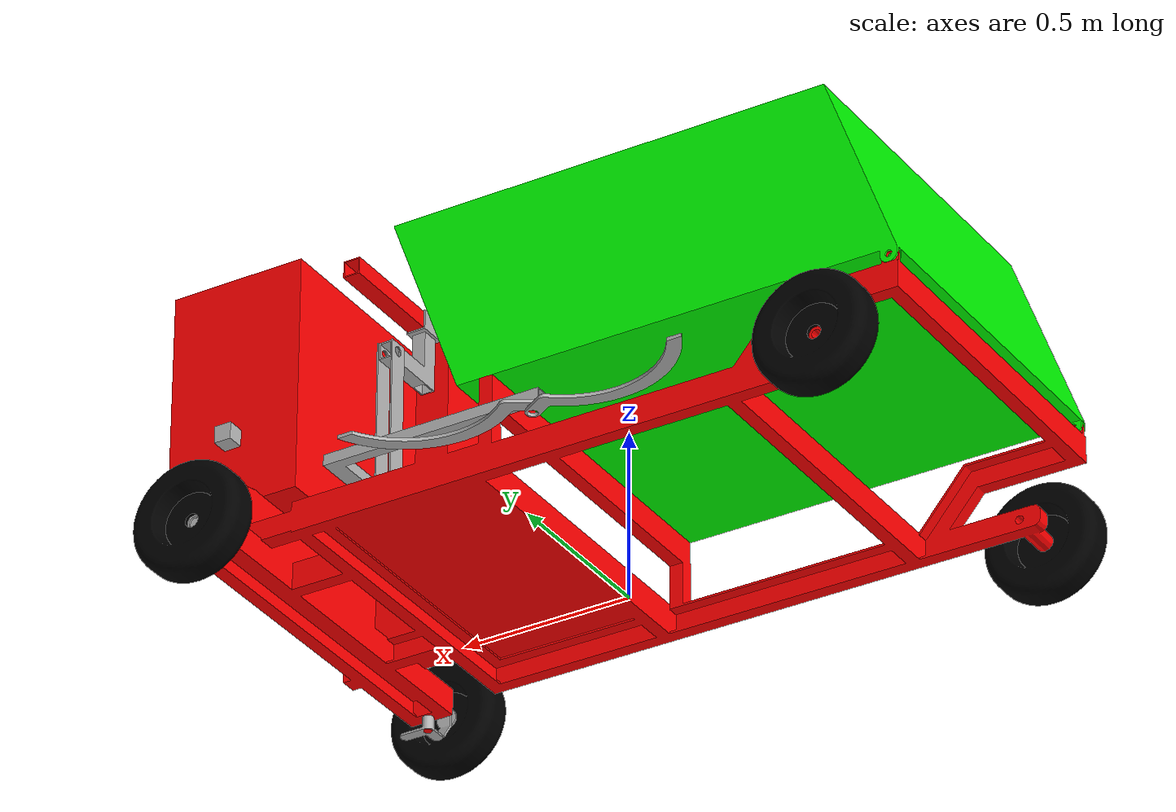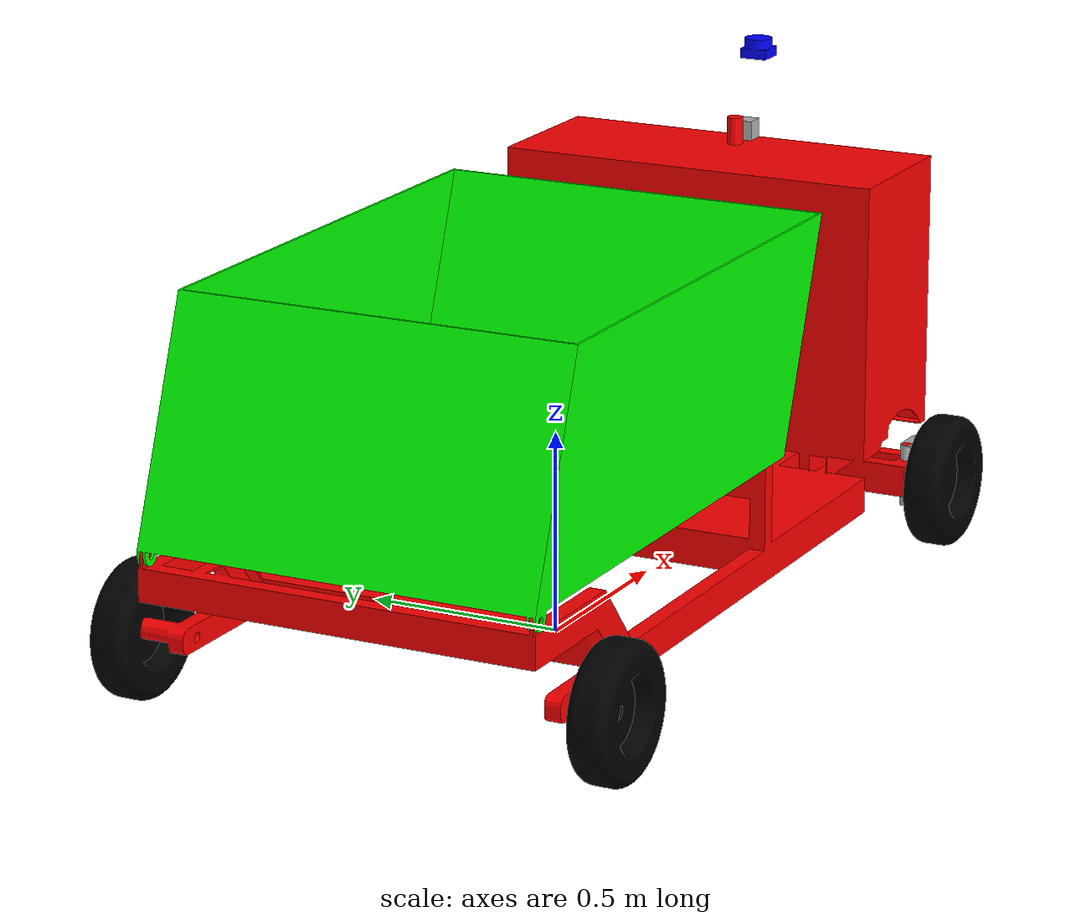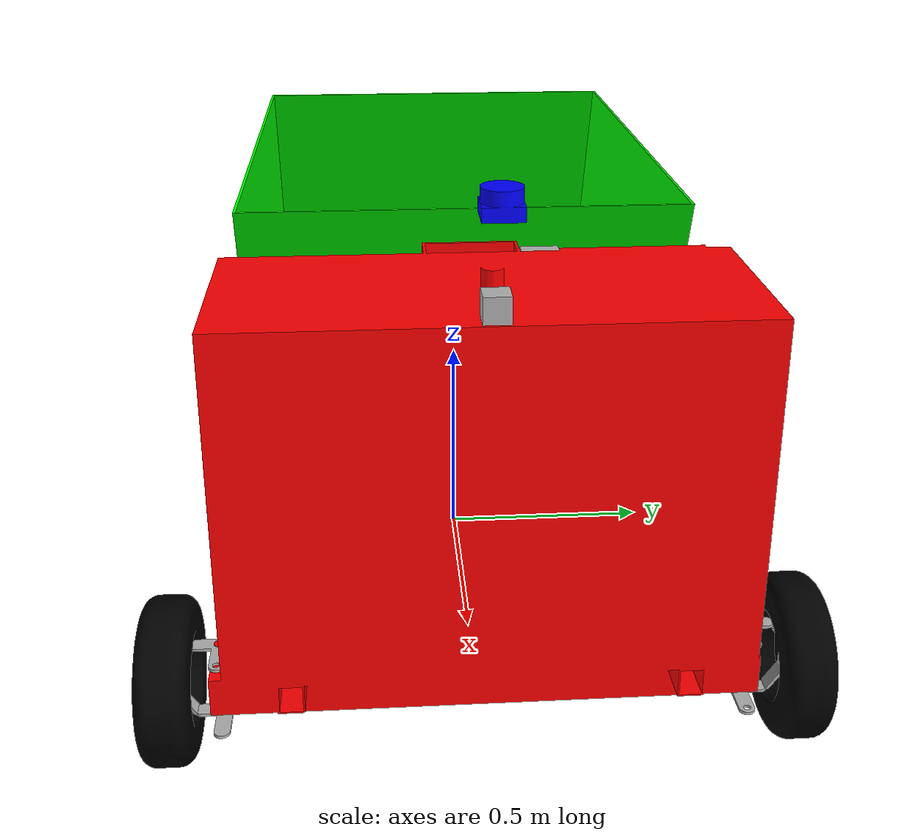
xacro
<?xml version="1.0" ?>
<robot name="garbage_robot" xmlns:xacro="http://www.ros.org/wiki/xacro">

<xacro:include filename="$(find garbage_robot_description)/urdf/materials.xacro" />
<xacro:include filename="$(find garbage_robot_description)/urdf/garbage_robot.trans" />
<xacro:include filename="$(find garbage_robot_description)/urdf/garbage_robot.gazebo" />
<link name="base_link">
  <inertial>
    <origin rpy="0 0 0" xyz="0.38482610777733756 0.0031040430443198147 0.3998905084334025"/>
    <mass value="223.35773084869004"/>
    <inertia ixx="40.549749" ixy="-0.114517" ixz="-13.629602" iyy="99.249109" iyz="-0.360598" izz="110.698343"/>
  </inertial>
  <visual>
    <origin rpy="0 0 0" xyz="0 0 0"/>
    <geometry>
      <mesh filename="package://garbage_robot_description/meshes/base_link.stl" scale="0.001 0.001 0.001"/>
    </geometry>
    <material name="red"/>
  </visual>
  <collision>
    <origin rpy="0 0 0" xyz="0 0 0"/>
    <geometry>
      <mesh filename="package://garbage_robot_description/meshes/base_link.stl" scale="0.001 0.001 0.001"/>
    </geometry>
  </collision>
</link>

<link name="back_wheel_R_1">
  <inertial>
    <origin rpy="0 0 0" xyz="-8.548717289613705e-15 -0.0050000000000000044 2.7755575615628914e-17"/>
    <mass value="48.069415006398515"/>
    <inertia ixx="0.430714" ixy="0.0" ixz="0.0" iyy="0.78997" iyz="-0.0" izz="0.430714"/>
  </inertial>
  <visual>
    <origin rpy="0 0 0" xyz="0.9 0.6 -0.195"/>
    <geometry>
      <mesh filename="package://garbage_robot_description/meshes/back_wheel_R_1.stl" scale="0.001 0.001 0.001"/>
    </geometry>
    <material name="black"/>
  </visual>
  <collision>
    <origin rpy="0 0 0" xyz="0.9 0.6 -0.195"/>
    <geometry>
      <mesh filename="package://garbage_robot_description/meshes/back_wheel_R_1.stl" scale="0.001 0.001 0.001"/>
    </geometry>
  </collision>
</link>

<link name="back_wheel_L_1">
  <inertial>
    <origin rpy="0 0 0" xyz="-8.548717289613705e-15 0.0050000000000000044 2.7755575615628914e-17"/>
    <mass value="48.069415006398515"/>
    <inertia ixx="0.430714" ixy="-0.0" ixz="0.0" iyy="0.78997" iyz="0.0" izz="0.430714"/>
  </inertial>
  <visual>
    <origin rpy="0 0 0" xyz="0.9 -0.6 -0.195"/>
    <geometry>
      <mesh filename="package://garbage_robot_description/meshes/back_wheel_L_1.stl" scale="0.001 0.001 0.001"/>
    </geometry>
    <material name="black"/>
  </visual>
  <collision>
    <origin rpy="0 0 0" xyz="0.9 -0.6 -0.195"/>
    <geometry>
      <mesh filename="package://garbage_robot_description/meshes/back_wheel_L_1.stl" scale="0.001 0.001 0.001"/>
    </geometry>
  </collision>
</link>

<link name="knuckle_right_1">
  <inertial>
    <origin rpy="0 0 0" xyz="0.010539451692655244 -0.037865406760327236 -0.08073060915094679"/>
    <mass value="0.87720060854411"/>
    <inertia ixx="0.004548" ixy="-0.000351" ixz="3.8e-05" iyy="0.003698" iyz="2.4e-05" izz="0.001842"/>
  </inertial>
  <visual>
    <origin rpy="0 0 0" xyz="-0.945 0.52 -0.285"/>
    <geometry>
      <mesh filename="package://garbage_robot_description/meshes/knuckle_right_1.stl" scale="0.001 0.001 0.001"/>
    </geometry>
    <material name="silver"/>
  </visual>
  <collision>
    <origin rpy="0 0 0" xyz="-0.945 0.52 -0.285"/>
    <geometry>
      <mesh filename="package://garbage_robot_description/meshes/knuckle_right_1.stl" scale="0.001 0.001 0.001"/>
    </geometry>
  </collision>
</link>

<link name="knuckle_left_1">
  <inertial>
    <origin rpy="0 0 0" xyz="0.009969859878305343 0.03821839597067289 -0.0799999999999999"/>
    <mass value="0.8688773515075006"/>
    <inertia ixx="0.004488" ixy="0.000333" ixz="-0.0" iyy="0.003619" iyz="0.0" izz="0.001801"/>
  </inertial>
  <visual>
    <origin rpy="0 0 0" xyz="-0.945 -0.52 -0.285"/>
    <geometry>
      <mesh filename="package://garbage_robot_description/meshes/knuckle_left_1.stl" scale="0.001 0.001 0.001"/>
    </geometry>
    <material name="silver"/>
  </visual>
  <collision>
    <origin rpy="0 0 0" xyz="-0.945 -0.52 -0.285"/>
    <geometry>
      <mesh filename="package://garbage_robot_description/meshes/knuckle_left_1.stl" scale="0.001 0.001 0.001"/>
    </geometry>
  </collision>
</link>

<link name="front_wheel_R_1">
  <inertial>
    <origin rpy="0 0 0" xyz="-4.942435471999573e-07 -0.0050000000000000044 2.220446049250313e-16"/>
    <mass value="48.069415006398515"/>
    <inertia ixx="0.430714" ixy="0.0" ixz="0.0" iyy="0.78997" iyz="0.0" izz="0.430714"/>
  </inertial>
  <visual>
    <origin rpy="0 0 0" xyz="-0.94501 0.616 -0.205"/>
    <geometry>
      <mesh filename="package://garbage_robot_description/meshes/front_wheel_R_1.stl" scale="0.001 0.001 0.001"/>
    </geometry>
    <material name="black"/>
  </visual>
  <collision>
    <origin rpy="0 0 0" xyz="-0.94501 0.616 -0.205"/>
    <geometry>
      <mesh filename="package://garbage_robot_description/meshes/front_wheel_R_1.stl" scale="0.001 0.001 0.001"/>
    </geometry>
  </collision>
</link>

<link name="front_wheel_L_1">
  <inertial>
    <origin rpy="0 0 0" xyz="-4.942435471999573e-07 0.0050000000000000044 5.551115123125783e-17"/>
    <mass value="48.069415006398515"/>
    <inertia ixx="0.430714" ixy="0.0" ixz="0.0" iyy="0.78997" iyz="0.0" izz="0.430714"/>
  </inertial>
  <visual>
    <origin rpy="0 0 0" xyz="-0.94501 -0.616 -0.205"/>
    <geometry>
      <mesh filename="package://garbage_robot_description/meshes/front_wheel_L_1.stl" scale="0.001 0.001 0.001"/>
    </geometry>
    <material name="black"/>
  </visual>
  <collision>
    <origin rpy="0 0 0" xyz="-0.94501 -0.616 -0.205"/>
    <geometry>
      <mesh filename="package://garbage_robot_description/meshes/front_wheel_L_1.stl" scale="0.001 0.001 0.001"/>
    </geometry>
  </collision>
</link>

<link name="link1_1">
  <inertial>
    <origin rpy="0 0 0" xyz="0.8999999999999999 0.0820028216111279 -0.12641985967462654"/>
    <mass value="2.146073295804804"/>
    <inertia ixx="0.018306" ixy="0.0" ixz="0.0" iyy="0.011609" iyz="0.00497" izz="0.007961"/>
  </inertial>
  <visual>
    <origin rpy="0 0 0" xyz="0.35 -0.1 -0.945"/>
    <geometry>
      <mesh filename="package://garbage_robot_description/meshes/link1_1.stl" scale="0.001 0.001 0.001"/>
    </geometry>
    <material name="silver"/>
  </visual>
  <collision>
    <origin rpy="0 0 0" xyz="0.35 -0.1 -0.945"/>
    <geometry>
      <mesh filename="package://garbage_robot_description/meshes/link1_1.stl" scale="0.001 0.001 0.001"/>
    </geometry>
  </collision>
</link>

<link name="LINK2_1">
  <inertial>
    <origin rpy="0 0 0" xyz="-0.10694805745507208 0.10992529567155457 -0.36171686512141704"/>
    <mass value="4.1711800597770425"/>
    <inertia ixx="0.144545" ixy="0.052615" ixz="-0.035282" iyy="0.209347" iyz="0.044606" izz="0.175506"/>
  </inertial>
  <visual>
    <origin rpy="0 0 0" xyz="-0.57 -0.305 -0.756"/>
    <geometry>
      <mesh filename="package://garbage_robot_description/meshes/LINK2_1.stl" scale="0.001 0.001 0.001"/>
    </geometry>
    <material name="silver"/>
  </visual>
  <collision>
    <origin rpy="0 0 0" xyz="-0.57 -0.305 -0.756"/>
    <geometry>
      <mesh filename="package://garbage_robot_description/meshes/LINK2_1.stl" scale="0.001 0.001 0.001"/>
    </geometry>
  </collision>
</link>

<link name="gripper1_1">
  <inertial>
    <origin rpy="0 0 0" xyz="0.25866397128286994 0.010473831160217162 -0.0050000000000000044"/>
    <mass value="1.7962228903755257"/>
    <inertia ixx="0.003042" ixy="-0.005052" ixz="0.0" iyy="0.040386" iyz="0.0" izz="0.043398"/>
  </inertial>
  <visual>
    <origin rpy="0 0 0" xyz="0.051 -0.56 -0.281"/>
    <geometry>
      <mesh filename="package://garbage_robot_description/meshes/gripper1_1.stl" scale="0.001 0.001 0.001"/>
    </geometry>
    <material name="silver"/>
  </visual>
  <collision>
    <origin rpy="0 0 0" xyz="0.051 -0.56 -0.281"/>
    <geometry>
      <mesh filename="package://garbage_robot_description/meshes/gripper1_1.stl" scale="0.001 0.001 0.001"/>
    </geometry>
  </collision>
</link>

<link name="container_1">
  <inertial>
    <origin rpy="0 0 0" xyz="1.5912718697858623 0.49300000000000277 0.20230925694218077"/>
    <mass value="22.181481802688776"/>
    <inertia ixx="3.924176" ixy="0.0" ixz="-0.277567" iyy="5.8003" iyz="0.0" izz="8.221847"/>
  </inertial>
  <visual>
    <origin rpy="0 0 0" xyz="1.955 0.493 -0.435"/>
    <geometry>
      <mesh filename="package://garbage_robot_description/meshes/container_1.stl" scale="0.001 0.001 0.001"/>
    </geometry>
    <material name="green"/>
  </visual>
  <collision>
    <origin rpy="0 0 0" xyz="1.955 0.493 -0.435"/>
    <geometry>
      <mesh filename="package://garbage_robot_description/meshes/container_1.stl" scale="0.001 0.001 0.001"/>
    </geometry>
  </collision>
</link>

<link name="lidar_1">
  <inertial>
    <origin rpy="0 0 0" xyz="-8.881784197001252e-16 0.0 0.023497521162210377"/>
    <mass value="0.2318339515171583"/>
    <inertia ixx="0.000132" ixy="-0.0" ixz="-0.0" iyy="0.000132" iyz="0.0" izz="0.000169"/>
  </inertial>
  <visual>
    <origin rpy="0 0 0" xyz="-1.01 -0.0 -1.07"/>
    <geometry>
      <mesh filename="package://garbage_robot_description/meshes/lidar_1.stl" scale="0.001 0.001 0.001"/>
    </geometry>
    <material name="blue"/>
  </visual>
  <collision>
    <origin rpy="0 0 0" xyz="-1.01 -0.0 -1.07"/>
    <geometry>
      <mesh filename="package://garbage_robot_description/meshes/lidar_1.stl" scale="0.001 0.001 0.001"/>
    </geometry>
  </collision>
</link>

<link name="front_cam_1">
  <inertial>
    <origin rpy="0 0 0" xyz="0.8700000000000001 0.0 0.02499999999999991"/>
    <mass value="0.1325"/>
    <inertia ixx="5.5e-05" ixy="-0.0" ixz="0.0" iyy="5.5e-05" iyz="0.0" izz="5.5e-05"/>
  </inertial>
  <visual>
    <origin rpy="0 0 0" xyz="-0.21 -0.0 -1.0"/>
    <geometry>
      <mesh filename="package://garbage_robot_description/meshes/front_cam_1.stl" scale="0.001 0.001 0.001"/>
    </geometry>
    <material name="silver"/>
  </visual>
  <collision>
    <origin rpy="0 0 0" xyz="-0.21 -0.0 -1.0"/>
    <geometry>
      <mesh filename="package://garbage_robot_description/meshes/front_cam_1.stl" scale="0.001 0.001 0.001"/>
    </geometry>
  </collision>
</link>

<link name="side_cam_1">
  <inertial>
    <origin rpy="0 0 0" xyz="0.8999999999999998 0.025000000000000022 -0.15000000000000002"/>
    <mass value="0.98125"/>
    <inertia ixx="0.000409" ixy="-0.0" ixz="0.0" iyy="0.000409" iyz="0.0" izz="0.000409"/>
  </inertial>
  <visual>
    <origin rpy="0 0 0" xyz="-0.01 -0.5 -0.65"/>
    <geometry>
      <mesh filename="package://garbage_robot_description/meshes/side_cam_1.stl" scale="0.001 0.001 0.001"/>
    </geometry>
    <material name="silver"/>
  </visual>
  <collision>
    <origin rpy="0 0 0" xyz="-0.01 -0.5 -0.65"/>
    <geometry>
      <mesh filename="package://garbage_robot_description/meshes/side_cam_1.stl" scale="0.001 0.001 0.001"/>
    </geometry>
  </collision>
</link>

<link name="gripper2_1">
  <inertial>
    <origin rpy="0 0 0" xyz="-0.25866397128287033 0.010473831160217162 -0.005000000000000171"/>
    <mass value="1.7962228903755257"/>
    <inertia ixx="0.003042" ixy="0.005052" ixz="0.0" iyy="0.040386" iyz="-0.0" izz="0.043398"/>
  </inertial>
  <visual>
    <origin rpy="0 0 0" xyz="0.051 -0.56 -0.281"/>
    <geometry>
      <mesh filename="package://garbage_robot_description/meshes/gripper2_1.stl" scale="0.001 0.001 0.001"/>
    </geometry>
    <material name="silver"/>
  </visual>
  <collision>
    <origin rpy="0 0 0" xyz="0.051 -0.56 -0.281"/>
    <geometry>
      <mesh filename="package://garbage_robot_description/meshes/gripper2_1.stl" scale="0.001 0.001 0.001"/>
    </geometry>
  </collision>
</link>
<link name="imu_link_1">
  <inertial>
    <origin rpy="0 0 0" xyz="0.0 0.0 0.0050000000000000044"/>
    <mass value="0.0265"/>
    <inertia ixx="6e-06" ixy="0.0" ixz="0.0" iyy="6e-06" iyz="0.0" izz="1.1e-05"/>
  </inertial>
  <visual>
    <origin rpy="0 0 0" xyz="-0.435 -0.0 -0.255"/>
    <geometry>
      <mesh filename="package://garbage_robot_description/meshes/imu_link_1.stl" scale="0.001 0.001 0.001"/>
    </geometry>
    <material name="silver"/>
  </visual>
  <collision>
    <origin rpy="0 0 0" xyz="-0.435 -0.0 -0.255"/>
    <geometry>
      <mesh filename="package://garbage_robot_description/meshes/imu_link_1.stl" scale="0.001 0.001 0.001"/>
    </geometry>
  </collision>
</link>
<joint name="back_right_joint" type="continuous">
  <origin rpy="0 0 0" xyz="-0.9 -0.6 0.195"/>
  <parent link="base_link"/>
  <child link="back_wheel_R_1"/>
  <axis xyz="0.0 1.0 0.0"/>
</joint>

<joint name="back_left_joint" type="continuous">
  <origin rpy="0 0 0" xyz="-0.9 0.6 0.195"/>
  <parent link="base_link"/>
  <child link="back_wheel_L_1"/>
  <axis xyz="0.0 1.0 0.0"/>
</joint>

<joint name="right_knuckle" type="revolute">
  <origin rpy="0 0 0" xyz="0.945 -0.52 0.285"/>
  <parent link="base_link"/>
  <child link="knuckle_right_1"/>
  <axis xyz="-0.0 0.0 1.0"/>
  <limit effort="100" lower="-0.523599" upper="0.523599" velocity="100"/>
</joint>

<joint name="left_knuckle" type="revolute">
  <origin rpy="0 0 0" xyz="0.945 0.52 0.285"/>
  <parent link="base_link"/>
  <child link="knuckle_left_1"/>
  <axis xyz="0.0 0.0 1.0"/>
  <limit effort="100" lower="-0.523599" upper="0.523599" velocity="100"/>
</joint>

<joint name="front_right_wheel_joint" type="continuous">
  <origin rpy="0 0 0" xyz="1e-05 -0.096 -0.08"/>
  <parent link="knuckle_right_1"/>
  <child link="front_wheel_R_1"/>
  <axis xyz="0.0 1.0 0.0"/>
</joint>

<joint name="front_left_wheel_joint" type="continuous">
  <origin rpy="0 0 0" xyz="1e-05 0.096 -0.08"/>
  <parent link="knuckle_left_1"/>
  <child link="front_wheel_L_1"/>
  <axis xyz="0.0 1.0 0.0"/>
</joint>

<joint name="Slider" type="prismatic">
  <origin rpy="0 0 0" xyz="-0.35 0.1 0.945"/>
  <parent link="base_link"/>
  <child link="link1_1"/>
  <axis xyz="0.0 1.0 0.0"/>
  <limit effort="100" lower="0.0" upper="0.3" velocity="0.5"/>
</joint>

<joint name="arm_joint" type="revolute">
  <origin rpy="0 0 0" xyz="0.92 0.205 -0.189"/>
  <parent link="link1_1"/>
  <child link="LINK2_1"/>
  <axis xyz="1.0 -0.0 0.0"/>
  <limit effort="100" lower="-3.14" upper="3.14" velocity="0.5"/>
</joint>

<joint name="gripper1_joint" type="revolute">
  <origin rpy="0 0 0" xyz="-0.621 0.255 -0.475"/>
  <parent link="LINK2_1"/>
  <child link="gripper1_1"/>
  <axis xyz="0.0 0.0 -1.0"/>
  <limit effort="100" lower="-3.14" upper="3.14" velocity="0.5"/>
</joint>

<joint name="tipper_joint" type="fixed">
  <origin rpy="0 0 0" xyz="-1.955 -0.493 0.435"/>
  <parent link="base_link"/>
  <child link="container_1"/>
</joint>
<joint name="lidar_joint" type="fixed">
  <origin rpy="0 0 0" xyz="1.15 0.0 1.2"/>
  <parent link="base_link"/>
  <child link="lidar_1"/>
</joint>

<joint name="front_cam_joint" type="fixed">
  <origin rpy="0 0 0" xyz="0.21 0.0 1.0"/>
  <parent link="base_link"/>
  <child link="front_cam_1"/>
</joint>

<joint name="side_cam_joint" type="fixed">
  <origin rpy="0 0 0" xyz="0.01 0.5 0.65"/>
  <parent link="base_link"/>
  <child link="side_cam_1"/>
</joint>

<joint name="gripper2_joint" type="revolute">
  <origin rpy="0 0 0" xyz="-0.621 0.255 -0.495"/>
  <parent link="LINK2_1"/>
  <child link="gripper2_1"/>
  <axis xyz ="-0.0 0.0 -1.0"/>
  <limit effort="100" lower="-3.14" upper="3.14" velocity="0.5"/>
</joint>
<joint name="imu_joint" type="fixed">
  <origin rpy="0 0 0" xyz="0.435 0.0 0.255"/>
  <parent link="base_link"/>
  <child link="imu_link_1"/>
</joint>

</robot>

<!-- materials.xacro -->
<robot name="garbage_robot" xmlns:xacro="http://www.ros.org/wiki/xacro" >

<material name="silver">
  <color rgba="0.700 0.700 0.700 1.000"/>
</material>

<material name="red">
  <color rgba="1.00 0.00 0.00 1.000"/>
</material>

<material name="green">
  <color rgba="0.00 1.00 0.00 1.000"/>
</material>

<material name="blue">
  <color rgba="0.000 0.000 1.000 1.000"/>
</material>

<material name="black">
  <color rgba="0.000 0.000 0.000 1.000"/>
</material>

</robot>

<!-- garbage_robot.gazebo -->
<robot name="garbage_robot" xmlns:xacro="http://www.ros.org/wiki/xacro" >

<xacro:property name="body_color" value="Gazebo/Green" />
<xacro:property name="wheel_color" value="Gazebo/Black" />
<xacro:property name="container_color" value="Gazebo/Red" />
<xacro:property name="manipulator_color" value="Gazebo/Orange" />
<xacro:property name="lidar_color" value="Gazebo/BlueLase" />

<gazebo>
  <plugin filename="libgazebo_ros_control.so" name="control">
  <robotNamespace>/</robotNamespace>
  </plugin>
</gazebo>

 <gazebo>
  <plugin name="differential_drive_controller" filename="libgazebo_ros_diff_drive.so">
    <robotNamespace>/</robotNamespace>
    <!-- Plugin update rate in Hz -->
    <updateRate>10</updateRate>

    <!-- Name of left joint, defaults to `left_joint` -->
    <leftJoint>back_right_joint</leftJoint>

    <!-- Name of right joint, defaults to `right_joint` -->
    <rightJoint>back_left_joint</rightJoint>

    <!-- The distance from the center of one wheel to the other, in meters, defaults to 0.34 m -->
    <wheelSeparation>1.2</wheelSeparation>

    <!-- Diameter of the wheels, in meters, defaults to 0.15 m -->
    <wheelDiameter>0.330</wheelDiameter>

    <!-- Wheel acceleration, in rad/s^2, defaults to 0.0 rad/s^2 -->
    <wheelAcceleration>1.0</wheelAcceleration>

    <!-- Maximum torque which the wheels can produce, in Nm, defaults to 5 Nm -->
    <wheelTorque>20</wheelTorque>

    <!-- Topic to receive geometry_msgs/Twist message commands, defaults to `cmd_vel` -->
    <commandTopic>/cmd_vel</commandTopic>

    <!-- Topic to publish nav_msgs/Odometry messages, defaults to `odom` -->
    <odometryTopic>odom</odometryTopic>

    <!-- Odometry frame, defaults to `odom` -->
    <odometryFrame>odom</odometryFrame>

    <!-- Robot frame to calculate odometry from, defaults to `base_footprint` -->
    <robotBaseFrame>base_link</robotBaseFrame>

    <!-- Odometry source, 0 for ENCODER, 1 for WORLD, defaults to WORLD -->
    <odometrySource>1</odometrySource>
    <!-- publish odomTransform -->
    <publishOdomTF> true </publishOdomTF>

    <!-- Set to true to publish transforms for the wheel links, defaults to false -->
    <publishWheelTF>true</publishWheelTF>

    <!-- Set to true to publish transforms for the odometry, defaults to true -->
    <publishOdom>true</publishOdom>

    <!-- Set to true to publish sensor_msgs/JointState on /joint_states for the wheel joints, defaults to false -->
    <publishWheelJointState>false</publishWheelJointState>

    <!-- Set to true to swap right and left wheels, defaults to true -->
    <legacyMode>false</legacyMode>
  </plugin>
</gazebo>
<!-- hokuyo -->
  <gazebo reference="lidar_1">
    <sensor type="ray" name="RP_lidar">
      <pose>0 0 0 0 0 0</pose>
      <visualize>false</visualize>
      <update_rate>40</update_rate>
      <ray>
        <scan>
          <horizontal>
            <samples>10000</samples>
            <resolution>1</resolution>
            <min_angle>-3.14</min_angle>
            <max_angle>3.14</max_angle>
          </horizontal>
        </scan>
        <range>
          <min>0.10</min>
          <max>100.0</max>
          <resolution>0.01</resolution>
        </range>
        <noise>
          <type>gaussian</type>
          <mean>0.0</mean>
          <stddev>0.01</stddev>
        </noise>
      </ray>
      <plugin name="gazebo_ros_head_hokuyo_controller" filename="libgazebo_ros_laser.so">
        <topicName>/scan</topicName>
        <frameName>lidar_1</frameName>

      </plugin>
    </sensor>
  </gazebo>
<gazebo reference="imu_link_1">
    <gravity>true</gravity>
    <sensor name="imu_sensor" type="imu">
      <always_on>true</always_on>
      <update_rate>100</update_rate>
      <visualize>true</visualize>
      <topic>__default_topic__</topic>
      <plugin filename="libgazebo_ros_imu_sensor.so" name="imu_plugin">
        <topicName>imu_data</topicName>
        <bodyName>imu_link</bodyName>
        <updateRateHZ>10.0</updateRateHZ>
        <gaussianNoise>0.0</gaussianNoise>
        <xyzOffset>0 0 0</xyzOffset>
        <rpyOffset>0 0 0</rpyOffset>
        <frameName>imu_link_1</frameName>
        <initialOrientationAsReference>false</initialOrientationAsReference>
      </plugin>
      <pose>0 0 0 0 0 0</pose>
    </sensor>
  </gazebo>

<gazebo reference="base_link">
  <material>${body_color}</material>
  <mu1>0.2</mu1>
  <mu2>0.2</mu2>
  <selfCollide>true</selfCollide>
  <gravity>true</gravity>
</gazebo>

<gazebo reference="back_wheel_R_1">
  <material>${wheel_color}</material>
  <mu1>100</mu1>
  <mu2>100</mu2>
  <selfCollide>true</selfCollide>
</gazebo>

<gazebo reference="back_wheel_L_1">
  <material>${wheel_color}</material>
  <mu1>100</mu1>
  <mu2>100</mu2>
  <selfCollide>true</selfCollide>
</gazebo>

<gazebo reference="knuckle_right_1">
  <material>${body_color}</material>
  <mu1>0.1</mu1>
  <mu2>0.1</mu2>
  <selfCollide>true</selfCollide>
</gazebo>

<gazebo reference="knuckle_left_1">
  <material>${body_color}</material>
  <mu1>0.1</mu1>
  <mu2>0.1</mu2>
  <selfCollide>true</selfCollide>
</gazebo>

<gazebo reference="front_wheel_R_1">
  <material>${wheel_color}</material>
  <mu1>0.1</mu1>
  <mu2>0.1</mu2>
  <selfCollide>true</selfCollide>
</gazebo>

<gazebo reference="front_wheel_L_1">
  <material>${wheel_color}</material>
  <mu1>0.1</mu1>
  <mu2>0.1</mu2>
  <selfCollide>true</selfCollide>
</gazebo>

<gazebo reference="link1_1">
  <material>${manipulator_color}</material>
  <mu1>0.2</mu1>
  <mu2>0.2</mu2>
  <selfCollide>true</selfCollide>
</gazebo>

<gazebo reference="LINK2_1">
  <material>${manipulator_color}</material>
  <mu1>0.2</mu1>
  <mu2>0.2</mu2>
  <selfCollide>true</selfCollide>
</gazebo>

<gazebo reference="gripper1_1">
  <material>${manipulator_color}</material>
  <mu1>0.2</mu1>
  <mu2>0.2</mu2>
  <selfCollide>true</selfCollide>
</gazebo>

<gazebo reference="container_1">
  <material>${container_color}</material>
  <mu1>0.2</mu1>
  <mu2>0.2</mu2>
  <selfCollide>true</selfCollide>
</gazebo>

<gazebo reference="lidar_1">
  <material>${lidar_color}</material>
  <mu1>0.2</mu1>
  <mu2>0.2</mu2>
  <selfCollide>true</selfCollide>
</gazebo>

<gazebo reference="front_cam_1">
  <material>${body_color}</material>
  <mu1>0.2</mu1>
  <mu2>0.2</mu2>
  <selfCollide>true</selfCollide>
</gazebo>

<gazebo reference="side_cam_1">
  <material>${body_color}</material>
  <mu1>0.2</mu1>
  <mu2>0.2</mu2>
  <selfCollide>true</selfCollide>
</gazebo>

<gazebo reference="gripper2_1">
  <material>${manipulator_color}</material>
  <mu1>0.2</mu1>
  <mu2>0.2</mu2>
  <selfCollide>true</selfCollide>
</gazebo>
<gazebo reference="imu_link_1">
  <material>${body_color}</material>
  <mu1>0.2</mu1>
  <mu2>0.2</mu2>
  <selfCollide>true</selfCollide>
</gazebo>

</robot>
